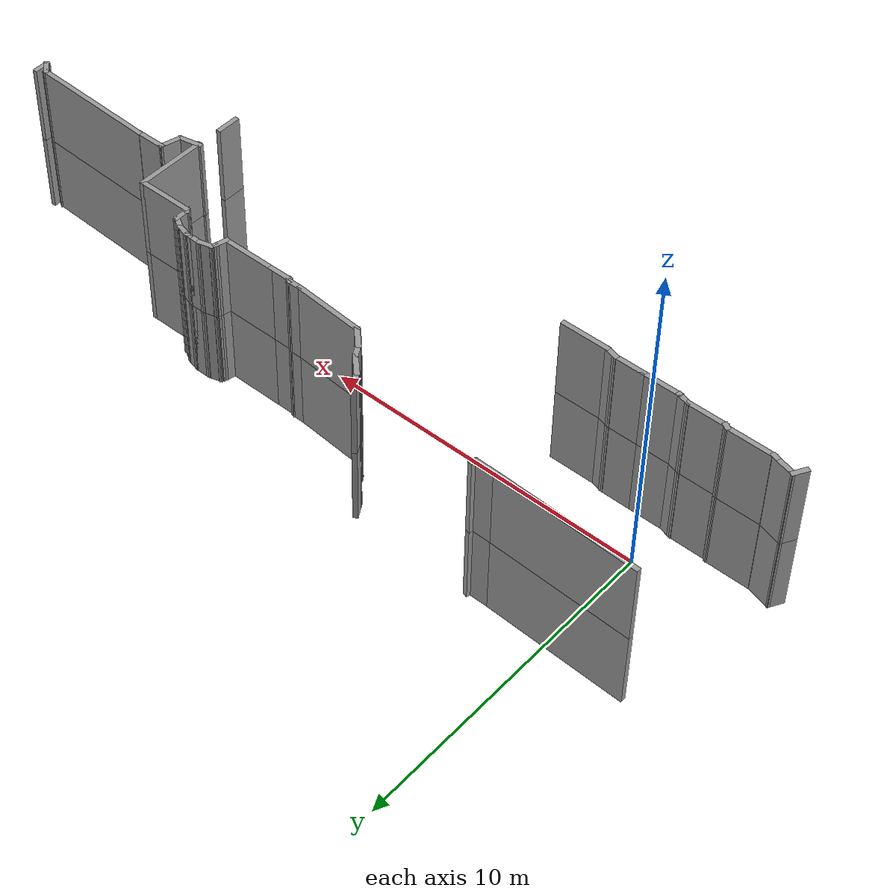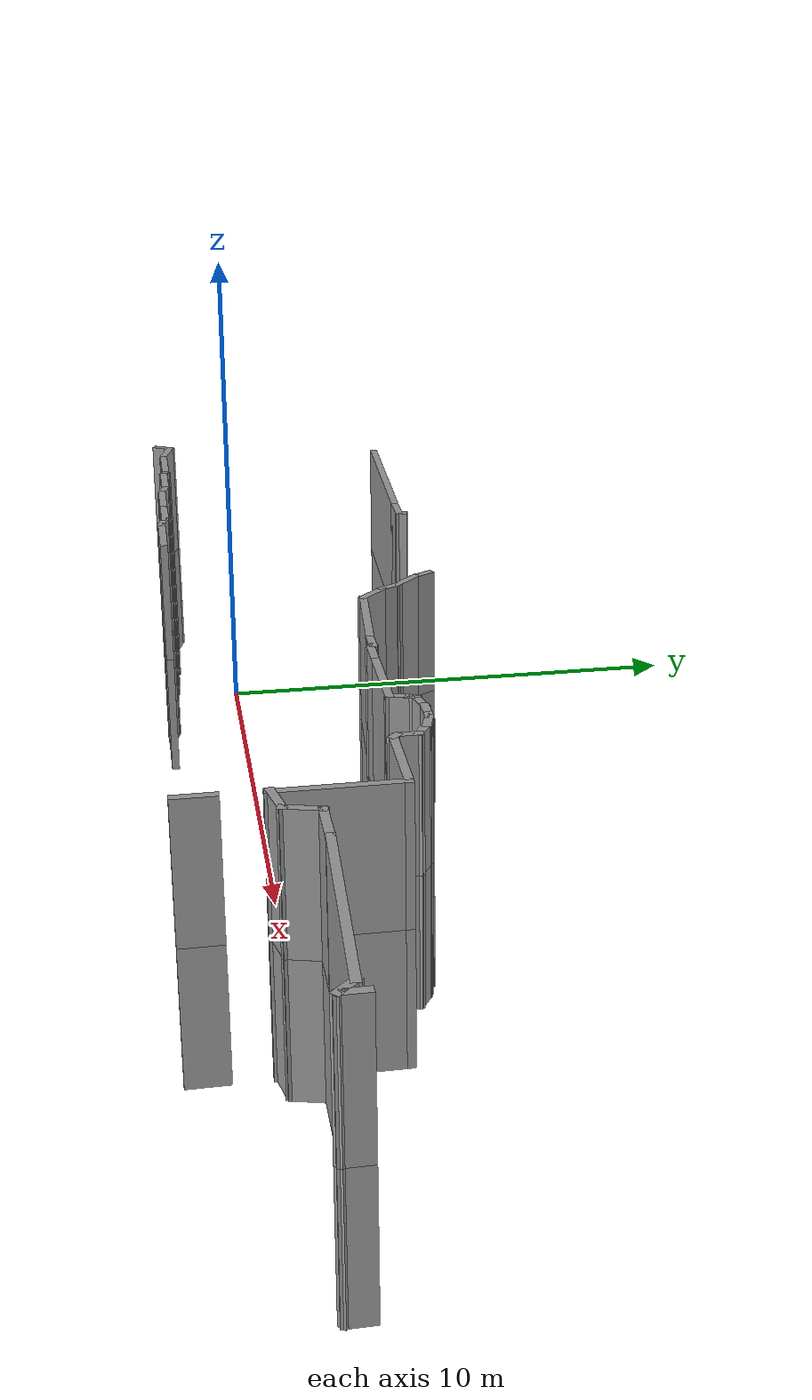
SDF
<sdf version="1.7">
 <model name="EnvDC00">
  <pose>8.4191 -5.62635 0 0 -0 0</pose>
  <link name="Wall_107">
   <collision name="Wall_107_Collision">
    <geometry><box><size>0.25 0.15 2.5</size></box></geometry>
    <pose>0 0 1.25 0 -0 0</pose>
   </collision>
   <visual name="Wall_107_Visual">
    <pose>0 0 1.25 0 -0 0</pose>
    <geometry><box><size>0.25 0.15 2.5</size></box></geometry>
    <material>
     <script><uri>file://media/materials/scripts/gazebo.material</uri><name>Gazebo/Grey</name></script>
     <ambient>1 1 1 1</ambient>
    </material>
    <meta><layer>0</layer></meta>
   </visual>
   <pose>-5.93616 9.1413 0 0 -0 -1.8326</pose>
  </link>
  <link name="Wall_108">
   <collision name="Wall_108_Collision">
    <geometry><box><size>0.75 0.15 2.5</size></box></geometry>
    <pose>0 0 1.25 0 -0 0</pose>
   </collision>
   <visual name="Wall_108_Visual">
    <pose>0 0 1.25 0 -0 0</pose>
    <geometry><box><size>0.75 0.15 2.5</size></box></geometry>
    <material>
     <script><uri>file://media/materials/scripts/gazebo.material</uri><name>Gazebo/Grey</name></script>
     <ambient>1 1 1 1</ambient>
    </material>
    <meta><layer>0</layer></meta>
   </visual>
   <pose>-6.24911 9.09509 0 0 -0 3.13464</pose>
  </link>
  <link name="Wall_111">
   <collision name="Wall_111_Collision">
    <geometry><box><size>4.42177 0.15 2.5</size></box></geometry>
    <pose>0 0 1.25 0 -0 0</pose>
   </collision>
   <visual name="Wall_111_Visual">
    <pose>0 0 1.25 0 -0 0</pose>
    <geometry><box><size>4.42177 0.15 2.5</size></box></geometry>
    <material>
     <script><uri>file://media/materials/scripts/gazebo.material</uri><name>Gazebo/Grey</name></script>
     <ambient>1 1 1 1</ambient>
    </material>
    <meta><layer>0</layer></meta>
   </visual>
   <pose>-8.68398 9.16284 0 0 -0 3.11085</pose>
  </link>
  <link name="Wall_142">
   <collision name="Wall_142_Collision">
    <geometry><box><size>0.75 0.15 2.5</size></box></geometry>
    <pose>0 0 1.25 0 -0 0</pose>
   </collision>
   <visual name="Wall_142_Visual">
    <pose>0 0 1.25 0 -0 0</pose>
    <geometry><box><size>0.75 0.15 2.5</size></box></geometry>
    <material>
     <script><uri>file://media/materials/scripts/gazebo.material</uri><name>Gazebo/Grey</name></script>
     <ambient>1 1 1 1</ambient>
    </material>
    <meta><layer>0</layer></meta>
   </visual>
   <pose>7.0376 4.07108 0 0 -0 -1.5708</pose>
  </link>
  <link name="Wall_167">
   <collision name="Wall_167_Collision">
    <geometry><box><size>1.5 0.15 2.5</size></box></geometry>
    <pose>0 0 1.25 0 -0 0</pose>
   </collision>
   <visual name="Wall_167_Visual">
    <pose>0 0 1.25 0 -0 0</pose>
    <geometry><box><size>1.5 0.15 2.5</size></box></geometry>
    <material>
     <script><uri>file://media/materials/scripts/gazebo.material</uri><name>Gazebo/Grey</name></script>
     <ambient>1 1 1 1</ambient>
    </material>
    <meta><layer>0</layer></meta>
   </visual>
   <pose>-5.33682 4.06947 0 0 -0 3.14159</pose>
  </link>
  <link name="Wall_168">
   <collision name="Wall_168_Collision">
    <geometry><box><size>0.5 0.15 2.5</size></box></geometry>
    <pose>0 0 1.25 0 -0 0</pose>
   </collision>
   <visual name="Wall_168_Visual">
    <pose>0 0 1.25 0 -0 0</pose>
    <geometry><box><size>0.5 0.15 2.5</size></box></geometry>
    <material>
     <script><uri>file://media/materials/scripts/gazebo.material</uri><name>Gazebo/Grey</name></script>
     <ambient>1 1 1 1</ambient>
    </material>
    <meta><layer>0</layer></meta>
   </visual>
   <pose>-6.18085 4.11477 0 0 -0 2.87979</pose>
  </link>
  <link name="Wall_169">
   <collision name="Wall_169_Collision">
    <geometry><box><size>1 0.15 2.5</size></box></geometry>
    <pose>0 0 1.25 0 -0 0</pose>
   </collision>
   <visual name="Wall_169_Visual">
    <pose>0 0 1.25 0 -0 0</pose>
    <geometry><box><size>1 0.15 2.5</size></box></geometry>
    <material>
     <script><uri>file://media/materials/scripts/gazebo.material</uri><name>Gazebo/Grey</name></script>
     <ambient>1 1 1 1</ambient>
    </material>
    <meta><layer>0</layer></meta>
   </visual>
   <pose>-6.77489 4.16006 0 0 -0 3.14159</pose>
  </link>
  <link name="Wall_170">
   <collision name="Wall_170_Collision">
    <geometry><box><size>1.25 0.15 2.5</size></box></geometry>
    <pose>0 0 1.25 0 -0 0</pose>
   </collision>
   <visual name="Wall_170_Visual">
    <pose>0 0 1.25 0 -0 0</pose>
    <geometry><box><size>1.25 0.15 2.5</size></box></geometry>
    <material>
     <script><uri>file://media/materials/scripts/gazebo.material</uri><name>Gazebo/Grey</name></script>
     <ambient>1 1 1 1</ambient>
    </material>
    <meta><layer>0</layer></meta>
   </visual>
   <pose>-7.74989 4.16006 0 0 -0 3.14159</pose>
  </link>
  <link name="Wall_172">
   <collision name="Wall_172_Collision">
    <geometry><box><size>0.5 0.15 2.5</size></box></geometry>
    <pose>0 0 1.25 0 -0 0</pose>
   </collision>
   <visual name="Wall_172_Visual">
    <pose>0 0 1.25 0 -0 0</pose>
    <geometry><box><size>0.5 0.15 2.5</size></box></geometry>
    <material>
     <script><uri>file://media/materials/scripts/gazebo.material</uri><name>Gazebo/Grey</name></script>
     <ambient>1 1 1 1</ambient>
    </material>
    <meta><layer>0</layer></meta>
   </visual>
   <pose>-8.46893 4.20535 0 0 -0 2.87979</pose>
  </link>
  <link name="Wall_173">
   <collision name="Wall_173_Collision">
    <geometry><box><size>1.25 0.15 2.5</size></box></geometry>
    <pose>0 0 1.25 0 -0 0</pose>
   </collision>
   <visual name="Wall_173_Visual">
    <pose>0 0 1.25 0 -0 0</pose>
    <geometry><box><size>1.25 0.15 2.5</size></box></geometry>
    <material>
     <script><uri>file://media/materials/scripts/gazebo.material</uri><name>Gazebo/Grey</name></script>
     <ambient>1 1 1 1</ambient>
    </material>
    <meta><layer>0</layer></meta>
   </visual>
   <pose>-9.18796 4.25064 0 0 -0 3.14159</pose>
  </link>
  <link name="Wall_174">
   <collision name="Wall_174_Collision">
    <geometry><box><size>0.25 0.15 2.5</size></box></geometry>
    <pose>0 0 1.25 0 -0 0</pose>
   </collision>
   <visual name="Wall_174_Visual">
    <pose>0 0 1.25 0 -0 0</pose>
    <geometry><box><size>0.25 0.15 2.5</size></box></geometry>
    <material>
     <script><uri>file://media/materials/scripts/gazebo.material</uri><name>Gazebo/Grey</name></script>
     <ambient>1 1 1 1</ambient>
    </material>
    <meta><layer>0</layer></meta>
   </visual>
   <pose>-9.78126 4.27564 0 0 -0 2.61799</pose>
  </link>
  <link name="Wall_175">
   <collision name="Wall_175_Collision">
    <geometry><box><size>1.5 0.15 2.5</size></box></geometry>
    <pose>0 0 1.25 0 -0 0</pose>
   </collision>
   <visual name="Wall_175_Visual">
    <pose>0 0 1.25 0 -0 0</pose>
    <geometry><box><size>1.5 0.15 2.5</size></box></geometry>
    <material>
     <script><uri>file://media/materials/scripts/gazebo.material</uri><name>Gazebo/Grey</name></script>
     <ambient>1 1 1 1</ambient>
    </material>
    <meta><layer>0</layer></meta>
   </visual>
   <pose>-10.4996 4.30065 0 0 -0 3.14159</pose>
  </link>
  <link name="Wall_180">
   <collision name="Wall_180_Collision">
    <geometry><box><size>0.25 0.15 2.5</size></box></geometry>
    <pose>0 0 1.25 0 -0 0</pose>
   </collision>
   <visual name="Wall_180_Visual">
    <pose>0 0 1.25 0 -0 0</pose>
    <geometry><box><size>0.25 0.15 2.5</size></box></geometry>
    <material>
     <script><uri>file://media/materials/scripts/gazebo.material</uri><name>Gazebo/Grey</name></script>
     <ambient>1 1 1 1</ambient>
    </material>
    <meta><layer>0</layer></meta>
   </visual>
   <pose>-11.2229 4.31359 0 0 -0 2.87979</pose>
  </link>
  <link name="Wall_181">
   <collision name="Wall_181_Collision">
    <geometry><box><size>0.75 0.15 2.5</size></box></geometry>
    <pose>0 0 1.25 0 -0 0</pose>
   </collision>
   <visual name="Wall_181_Visual">
    <pose>0 0 1.25 0 -0 0</pose>
    <geometry><box><size>0.75 0.15 2.5</size></box></geometry>
    <material>
     <script><uri>file://media/materials/scripts/gazebo.material</uri><name>Gazebo/Grey</name></script>
     <ambient>1 1 1 1</ambient>
    </material>
    <meta><layer>0</layer></meta>
   </visual>
   <pose>-11.5609 4.40417 0 0 -0 2.87979</pose>
  </link>
  <link name="Wall_187">
   <collision name="Wall_187_Collision">
    <geometry><box><size>0.5 0.15 2.5</size></box></geometry>
    <pose>0 0 1.25 0 -0 0</pose>
   </collision>
   <visual name="Wall_187_Visual">
    <pose>0 0 1.25 0 -0 0</pose>
    <geometry><box><size>0.5 0.15 2.5</size></box></geometry>
    <material>
     <script><uri>file://media/materials/scripts/gazebo.material</uri><name>Gazebo/Grey</name></script>
     <ambient>1 1 1 1</ambient>
    </material>
    <meta><layer>0</layer></meta>
   </visual>
   <pose>-11.9382 4.33026 0 0 -0 -2.0944</pose>
  </link>
  <link name="Wall_274">
   <collision name="Wall_274_Collision">
    <geometry><box><size>0.519297 0.15 2.5</size></box></geometry>
    <pose>0 0 1.25 0 -0 0</pose>
   </collision>
   <visual name="Wall_274_Visual">
    <pose>0 0 1.25 0 -0 0</pose>
    <geometry><box><size>0.519297 0.15 2.5</size></box></geometry>
    <material>
     <script><uri>file://media/materials/scripts/gazebo.material</uri><name>Gazebo/Grey</name></script>
     <ambient>1 1 1 1</ambient>
    </material>
    <meta><layer>1</layer></meta>
   </visual>
   <pose>12.7164 5.69748 2.5 0 -0 -1.5708</pose>
  </link>
  <link name="Wall_275">
   <collision name="Wall_275_Collision">
    <geometry><box><size>0.5 0.15 2.5</size></box></geometry>
    <pose>0 0 1.25 0 -0 0</pose>
   </collision>
   <visual name="Wall_275_Visual">
    <pose>0 0 1.25 0 -0 0</pose>
    <geometry><box><size>0.5 0.15 2.5</size></box></geometry>
    <material>
     <script><uri>file://media/materials/scripts/gazebo.material</uri><name>Gazebo/Grey</name></script>
     <ambient>1 1 1 1</ambient>
    </material>
    <meta><layer>1</layer></meta>
   </visual>
   <pose>12.5926 5.63658 2.5 0 -0 2.35619</pose>
  </link>
  <link name="Wall_276">
   <collision name="Wall_276_Collision">
    <geometry><box><size>3.99642 0.15 2.5</size></box></geometry>
    <pose>0 0 1.25 0 -0 0</pose>
   </collision>
   <visual name="Wall_276_Visual">
    <pose>0 0 1.25 0 -0 0</pose>
    <geometry><box><size>3.99642 0.15 2.5</size></box></geometry>
    <material>
     <script><uri>file://media/materials/scripts/gazebo.material</uri><name>Gazebo/Grey</name></script>
     <ambient>1 1 1 1</ambient>
    </material>
    <meta><layer>1</layer></meta>
   </visual>
   <pose>10.547 5.83328 2.5 0 -0 3.10365</pose>
  </link>
  <link name="Wall_277">
   <collision name="Wall_277_Collision">
    <geometry><box><size>1 0.15 2.5</size></box></geometry>
    <pose>0 0 1.25 0 -0 0</pose>
   </collision>
   <visual name="Wall_277_Visual">
    <pose>0 0 1.25 0 -0 0</pose>
    <geometry><box><size>1 0.15 2.5</size></box></geometry>
    <material>
     <script><uri>file://media/materials/scripts/gazebo.material</uri><name>Gazebo/Grey</name></script>
     <ambient>1 1 1 1</ambient>
    </material>
    <meta><layer>1</layer></meta>
   </visual>
   <pose>8.20021 5.89989 2.5 0 -0 3.14159</pose>
  </link>
  <link name="Wall_278">
   <collision name="Wall_278_Collision">
    <geometry><box><size>0.75 0.15 2.5</size></box></geometry>
    <pose>0 0 1.25 0 -0 0</pose>
   </collision>
   <visual name="Wall_278_Visual">
    <pose>0 0 1.25 0 -0 0</pose>
    <geometry><box><size>0.75 0.15 2.5</size></box></geometry>
    <material>
     <script><uri>file://media/materials/scripts/gazebo.material</uri><name>Gazebo/Grey</name></script>
     <ambient>1 1 1 1</ambient>
    </material>
    <meta><layer>1</layer></meta>
   </visual>
   <pose>7.69756 5.61011 2.5 0 -0 -1.8326</pose>
  </link>
  <link name="Wall_279">
   <collision name="Wall_279_Collision">
    <geometry><box><size>0.761118 0.15 2.5</size></box></geometry>
    <pose>0 0 1.25 0 -0 0</pose>
   </collision>
   <visual name="Wall_279_Visual">
    <pose>0 0 1.25 0 -0 0</pose>
    <geometry><box><size>0.761118 0.15 2.5</size></box></geometry>
    <material>
     <script><uri>file://media/materials/scripts/gazebo.material</uri><name>Gazebo/Grey</name></script>
     <ambient>1 1 1 1</ambient>
    </material>
    <meta><layer>1</layer></meta>
   </visual>
   <pose>7.32083 5.25778 2.5 0 -0 -2.93542</pose>
  </link>
  <link name="Wall_280">
   <collision name="Wall_280_Collision">
    <geometry><box><size>2.25 0.15 2.5</size></box></geometry>
    <pose>0 0 1.25 0 -0 0</pose>
   </collision>
   <visual name="Wall_280_Visual">
    <pose>0 0 1.25 0 -0 0</pose>
    <geometry><box><size>2.25 0.15 2.5</size></box></geometry>
    <material>
     <script><uri>file://media/materials/scripts/gazebo.material</uri><name>Gazebo/Grey</name></script>
     <ambient>1 1 1 1</ambient>
    </material>
    <meta><layer>1</layer></meta>
   </visual>
   <pose>7.07114 6.22054 2.5 0 -0 1.5708</pose>
  </link>
  <link name="Wall_281">
   <collision name="Wall_281_Collision">
    <geometry><box><size>1.75 0.15 2.5</size></box></geometry>
    <pose>0 0 1.25 0 -0 0</pose>
   </collision>
   <visual name="Wall_281_Visual">
    <pose>0 0 1.25 0 -0 0</pose>
    <geometry><box><size>1.75 0.15 2.5</size></box></geometry>
    <material>
     <script><uri>file://media/materials/scripts/gazebo.material</uri><name>Gazebo/Grey</name></script>
     <ambient>1 1 1 1</ambient>
    </material>
    <meta><layer>1</layer></meta>
   </visual>
   <pose>6.27114 7.27054 2.5 0 -0 3.14159</pose>
  </link>
  <link name="Wall_282">
   <collision name="Wall_282_Collision">
    <geometry><box><size>0.25 0.15 2.5</size></box></geometry>
    <pose>0 0 1.25 0 -0 0</pose>
   </collision>
   <visual name="Wall_282_Visual">
    <pose>0 0 1.25 0 -0 0</pose>
    <geometry><box><size>0.25 0.15 2.5</size></box></geometry>
    <material>
     <script><uri>file://media/materials/scripts/gazebo.material</uri><name>Gazebo/Grey</name></script>
     <ambient>1 1 1 1</ambient>
    </material>
    <meta><layer>1</layer></meta>
   </visual>
   <pose>5.43578 7.3059 2.5 0 -0 2.35619</pose>
  </link>
  <link name="Wall_283">
   <collision name="Wall_283_Collision">
    <geometry><box><size>0.5 0.15 2.5</size></box></geometry>
    <pose>0 0 1.25 0 -0 0</pose>
   </collision>
   <visual name="Wall_283_Visual">
    <pose>0 0 1.25 0 -0 0</pose>
    <geometry><box><size>0.5 0.15 2.5</size></box></geometry>
    <material>
     <script><uri>file://media/materials/scripts/gazebo.material</uri><name>Gazebo/Grey</name></script>
     <ambient>1 1 1 1</ambient>
    </material>
    <meta><layer>1</layer></meta>
   </visual>
   <pose>5.40043 7.51625 2.5 0 -0 1.5708</pose>
  </link>
  <link name="Wall_284">
   <collision name="Wall_284_Collision">
    <geometry><box><size>0.5 0.15 2.5</size></box></geometry>
    <pose>0 0 1.25 0 -0 0</pose>
   </collision>
   <visual name="Wall_284_Visual">
    <pose>0 0 1.25 0 -0 0</pose>
    <geometry><box><size>0.5 0.15 2.5</size></box></geometry>
    <material>
     <script><uri>file://media/materials/scripts/gazebo.material</uri><name>Gazebo/Grey</name></script>
     <ambient>1 1 1 1</ambient>
    </material>
    <meta><layer>1</layer></meta>
   </visual>
   <pose>5.24887 7.77875 2.5 0 -0 2.61799</pose>
  </link>
  <link name="Wall_285">
   <collision name="Wall_285_Collision">
    <geometry><box><size>0.5 0.15 2.5</size></box></geometry>
    <pose>0 0 1.25 0 -0 0</pose>
   </collision>
   <visual name="Wall_285_Visual">
    <pose>0 0 1.25 0 -0 0</pose>
    <geometry><box><size>0.5 0.15 2.5</size></box></geometry>
    <material>
     <script><uri>file://media/materials/scripts/gazebo.material</uri><name>Gazebo/Grey</name></script>
     <ambient>1 1 1 1</ambient>
    </material>
    <meta><layer>1</layer></meta>
   </visual>
   <pose>4.92828 7.91155 2.5 0 -0 2.87979</pose>
  </link>
  <link name="Wall_286">
   <collision name="Wall_286_Collision">
    <geometry><box><size>0.25 0.15 2.5</size></box></geometry>
    <pose>0 0 1.25 0 -0 0</pose>
   </collision>
   <visual name="Wall_286_Visual">
    <pose>0 0 1.25 0 -0 0</pose>
    <geometry><box><size>0.25 0.15 2.5</size></box></geometry>
    <material>
     <script><uri>file://media/materials/scripts/gazebo.material</uri><name>Gazebo/Grey</name></script>
     <ambient>1 1 1 1</ambient>
    </material>
    <meta><layer>1</layer></meta>
   </visual>
   <pose>4.70925 7.95684 2.5 0 -0 3.14159</pose>
  </link>
  <link name="Wall_287">
   <collision name="Wall_287_Collision">
    <geometry><box><size>0.5 0.15 2.5</size></box></geometry>
    <pose>0 0 1.25 0 -0 0</pose>
   </collision>
   <visual name="Wall_287_Visual">
    <pose>0 0 1.25 0 -0 0</pose>
    <geometry><box><size>0.5 0.15 2.5</size></box></geometry>
    <material>
     <script><uri>file://media/materials/scripts/gazebo.material</uri><name>Gazebo/Grey</name></script>
     <ambient>1 1 1 1</ambient>
    </material>
    <meta><layer>1</layer></meta>
   </visual>
   <pose>4.48425 7.95684 2.5 0 -0 3.14159</pose>
  </link>
  <link name="Wall_288">
   <collision name="Wall_288_Collision">
    <geometry><box><size>0.5 0.15 2.5</size></box></geometry>
    <pose>0 0 1.25 0 -0 0</pose>
   </collision>
   <visual name="Wall_288_Visual">
    <pose>0 0 1.25 0 -0 0</pose>
    <geometry><box><size>0.5 0.15 2.5</size></box></geometry>
    <material>
     <script><uri>file://media/materials/scripts/gazebo.material</uri><name>Gazebo/Grey</name></script>
     <ambient>1 1 1 1</ambient>
    </material>
    <meta><layer>1</layer></meta>
   </visual>
   <pose>4.14021 7.91155 2.5 0 -0 -2.87979</pose>
  </link>
  <link name="Wall_289">
   <collision name="Wall_289_Collision">
    <geometry><box><size>0.25 0.15 2.5</size></box></geometry>
    <pose>0 0 1.25 0 -0 0</pose>
   </collision>
   <visual name="Wall_289_Visual">
    <pose>0 0 1.25 0 -0 0</pose>
    <geometry><box><size>0.25 0.15 2.5</size></box></geometry>
    <material>
     <script><uri>file://media/materials/scripts/gazebo.material</uri><name>Gazebo/Grey</name></script>
     <ambient>1 1 1 1</ambient>
    </material>
    <meta><layer>1</layer></meta>
   </visual>
   <pose>3.94617 7.82295 2.5 0 -0 -2.0944</pose>
  </link>
  <link name="Wall_290">
   <collision name="Wall_290_Collision">
    <geometry><box><size>0.5 0.15 2.5</size></box></geometry>
    <pose>0 0 1.25 0 -0 0</pose>
   </collision>
   <visual name="Wall_290_Visual">
    <pose>0 0 1.25 0 -0 0</pose>
    <geometry><box><size>0.5 0.15 2.5</size></box></geometry>
    <material>
     <script><uri>file://media/materials/scripts/gazebo.material</uri><name>Gazebo/Grey</name></script>
     <ambient>1 1 1 1</ambient>
    </material>
    <meta><layer>1</layer></meta>
   </visual>
   <pose>3.87588 7.61061 2.5 0 -0 -1.8326</pose>
  </link>
  <link name="Wall_291">
   <collision name="Wall_291_Collision">
    <geometry><box><size>1.75 0.15 2.5</size></box></geometry>
    <pose>0 0 1.25 0 -0 0</pose>
   </collision>
   <visual name="Wall_291_Visual">
    <pose>0 0 1.25 0 -0 0</pose>
    <geometry><box><size>1.75 0.15 2.5</size></box></geometry>
    <material>
     <script><uri>file://media/materials/scripts/gazebo.material</uri><name>Gazebo/Grey</name></script>
     <ambient>1 1 1 1</ambient>
    </material>
    <meta><layer>1</layer></meta>
   </visual>
   <pose>3.03058 7.44158 2.5 0 -0 3.14159</pose>
  </link>
  <link name="Wall_292">
   <collision name="Wall_292_Collision">
    <geometry><box><size>0.75 0.15 2.5</size></box></geometry>
    <pose>0 0 1.25 0 -0 0</pose>
   </collision>
   <visual name="Wall_292_Visual">
    <pose>0 0 1.25 0 -0 0</pose>
    <geometry><box><size>0.75 0.15 2.5</size></box></geometry>
    <material>
     <script><uri>file://media/materials/scripts/gazebo.material</uri><name>Gazebo/Grey</name></script>
     <ambient>1 1 1 1</ambient>
    </material>
    <meta><layer>1</layer></meta>
   </visual>
   <pose>1.93058 7.44158 2.5 0 -0 3.14159</pose>
  </link>
  <link name="Wall_293">
   <collision name="Wall_293_Collision">
    <geometry><box><size>0.25 0.15 2.5</size></box></geometry>
    <pose>0 0 1.25 0 -0 0</pose>
   </collision>
   <visual name="Wall_293_Visual">
    <pose>0 0 1.25 0 -0 0</pose>
    <geometry><box><size>0.25 0.15 2.5</size></box></geometry>
    <material>
     <script><uri>file://media/materials/scripts/gazebo.material</uri><name>Gazebo/Grey</name></script>
     <ambient>1 1 1 1</ambient>
    </material>
    <meta><layer>1</layer></meta>
   </visual>
   <pose>1.58728 7.46658 2.5 0 -0 2.61799</pose>
  </link>
  <link name="Wall_294">
   <collision name="Wall_294_Collision">
    <geometry><box><size>0.5 0.15 2.5</size></box></geometry>
    <pose>0 0 1.25 0 -0 0</pose>
   </collision>
   <visual name="Wall_294_Visual">
    <pose>0 0 1.25 0 -0 0</pose>
    <geometry><box><size>0.5 0.15 2.5</size></box></geometry>
    <material>
     <script><uri>file://media/materials/scripts/gazebo.material</uri><name>Gazebo/Grey</name></script>
     <ambient>1 1 1 1</ambient>
    </material>
    <meta><layer>1</layer></meta>
   </visual>
   <pose>1.36898 7.49158 2.5 0 -0 3.14159</pose>
  </link>
  <link name="Wall_295">
   <collision name="Wall_295_Collision">
    <geometry><box><size>2.23535 0.15 2.5</size></box></geometry>
    <pose>0 0 1.25 0 -0 0</pose>
   </collision>
   <visual name="Wall_295_Visual">
    <pose>0 0 1.25 0 -0 0</pose>
    <geometry><box><size>2.23535 0.15 2.5</size></box></geometry>
    <material>
     <script><uri>file://media/materials/scripts/gazebo.material</uri><name>Gazebo/Grey</name></script>
     <ambient>1 1 1 1</ambient>
    </material>
    <meta><layer>1</layer></meta>
   </visual>
   <pose>0.154204 7.56922 2.5 0 -0 3.06706</pose>
  </link>
  <link name="Wall_296">
   <collision name="Wall_296_Collision">
    <geometry><box><size>0.75 0.15 2.5</size></box></geometry>
    <pose>0 0 1.25 0 -0 0</pose>
   </collision>
   <visual name="Wall_296_Visual">
    <pose>0 0 1.25 0 -0 0</pose>
    <geometry><box><size>0.75 0.15 2.5</size></box></geometry>
    <material>
     <script><uri>file://media/materials/scripts/gazebo.material</uri><name>Gazebo/Grey</name></script>
     <ambient>1 1 1 1</ambient>
    </material>
    <meta><layer>1</layer></meta>
   </visual>
   <pose>-1.09771 7.859 2.5 0 -0 2.35619</pose>
  </link>
  <link name="Wall_297">
   <collision name="Wall_297_Collision">
    <geometry><box><size>0.5 0.15 2.5</size></box></geometry>
    <pose>0 0 1.25 0 -0 0</pose>
   </collision>
   <visual name="Wall_297_Visual">
    <pose>0 0 1.25 0 -0 0</pose>
    <geometry><box><size>0.5 0.15 2.5</size></box></geometry>
    <material>
     <script><uri>file://media/materials/scripts/gazebo.material</uri><name>Gazebo/Grey</name></script>
     <ambient>1 1 1 1</ambient>
    </material>
    <meta><layer>1</layer></meta>
   </visual>
   <pose>-1.39734 8.22269 2.5 0 -0 2.0944</pose>
  </link>
  <link name="Wall_298">
   <collision name="Wall_298_Collision">
    <geometry><box><size>0.75 0.15 2.5</size></box></geometry>
    <pose>0 0 1.25 0 -0 0</pose>
   </collision>
   <visual name="Wall_298_Visual">
    <pose>0 0 1.25 0 -0 0</pose>
    <geometry><box><size>0.75 0.15 2.5</size></box></geometry>
    <material>
     <script><uri>file://media/materials/scripts/gazebo.material</uri><name>Gazebo/Grey</name></script>
     <ambient>1 1 1 1</ambient>
    </material>
    <meta><layer>1</layer></meta>
   </visual>
   <pose>-1.69697 8.58637 2.5 0 -0 2.35619</pose>
  </link>
  <link name="Wall_299">
   <collision name="Wall_299_Collision">
    <geometry><box><size>0.5 0.15 2.5</size></box></geometry>
    <pose>0 0 1.25 0 -0 0</pose>
   </collision>
   <visual name="Wall_299_Visual">
    <pose>0 0 1.25 0 -0 0</pose>
    <geometry><box><size>0.5 0.15 2.5</size></box></geometry>
    <material>
     <script><uri>file://media/materials/scripts/gazebo.material</uri><name>Gazebo/Grey</name></script>
     <ambient>1 1 1 1</ambient>
    </material>
    <meta><layer>1</layer></meta>
   </visual>
   <pose>-1.9966 8.95006 2.5 0 -0 2.0944</pose>
  </link>
  <link name="Wall_314">
   <collision name="Wall_314_Collision">
    <geometry><box><size>0.25 0.15 2.5</size></box></geometry>
    <pose>0 0 1.25 0 -0 0</pose>
   </collision>
   <visual name="Wall_314_Visual">
    <pose>0 0 1.25 0 -0 0</pose>
    <geometry><box><size>0.25 0.15 2.5</size></box></geometry>
    <material>
     <script><uri>file://media/materials/scripts/gazebo.material</uri><name>Gazebo/Grey</name></script>
     <ambient>1 1 1 1</ambient>
    </material>
    <meta><layer>1</layer></meta>
   </visual>
   <pose>-5.93616 9.1413 2.5 0 -0 -1.8326</pose>
  </link>
  <link name="Wall_315">
   <collision name="Wall_315_Collision">
    <geometry><box><size>0.750014 0.15 2.5</size></box></geometry>
    <pose>0 0 1.25 0 -0 0</pose>
   </collision>
   <visual name="Wall_315_Visual">
    <pose>0 0 1.25 0 -0 0</pose>
    <geometry><box><size>0.750014 0.15 2.5</size></box></geometry>
    <material>
     <script><uri>file://media/materials/scripts/gazebo.material</uri><name>Gazebo/Grey</name></script>
     <ambient>1 1 1 1</ambient>
    </material>
    <meta><layer>1</layer></meta>
   </visual>
   <pose>-6.24911 9.09509 2.5 0 -0 3.13464</pose>
  </link>
  <link name="Wall_316">
   <collision name="Wall_316_Collision">
    <geometry><box><size>4.42177 0.15 2.5</size></box></geometry>
    <pose>0 0 1.25 0 -0 0</pose>
   </collision>
   <visual name="Wall_316_Visual">
    <pose>0 0 1.25 0 -0 0</pose>
    <geometry><box><size>4.42177 0.15 2.5</size></box></geometry>
    <material>
     <script><uri>file://media/materials/scripts/gazebo.material</uri><name>Gazebo/Grey</name></script>
     <ambient>1 1 1 1</ambient>
    </material>
    <meta><layer>1</layer></meta>
   </visual>
   <pose>-8.68398 9.16284 2.5 0 -0 3.11085</pose>
  </link>
  <link name="Wall_332">
   <collision name="Wall_332_Collision">
    <geometry><box><size>0.75 0.15 2.5</size></box></geometry>
    <pose>0 0 1.25 0 -0 0</pose>
   </collision>
   <visual name="Wall_332_Visual">
    <pose>0 0 1.25 0 -0 0</pose>
    <geometry><box><size>0.75 0.15 2.5</size></box></geometry>
    <material>
     <script><uri>file://media/materials/scripts/gazebo.material</uri><name>Gazebo/Grey</name></script>
     <ambient>1 1 1 1</ambient>
    </material>
    <meta><layer>1</layer></meta>
   </visual>
   <pose>7.0376 4.07108 2.5 0 -0 -1.5708</pose>
  </link>
  <link name="Wall_355">
   <collision name="Wall_355_Collision">
    <geometry><box><size>1.5 0.15 2.5</size></box></geometry>
    <pose>0 0 1.25 0 -0 0</pose>
   </collision>
   <visual name="Wall_355_Visual">
    <pose>0 0 1.25 0 -0 0</pose>
    <geometry><box><size>1.5 0.15 2.5</size></box></geometry>
    <material>
     <script><uri>file://media/materials/scripts/gazebo.material</uri><name>Gazebo/Grey</name></script>
     <ambient>1 1 1 1</ambient>
    </material>
    <meta><layer>1</layer></meta>
   </visual>
   <pose>-5.33682 4.06947 2.5 0 -0 3.14159</pose>
  </link>
  <link name="Wall_356">
   <collision name="Wall_356_Collision">
    <geometry><box><size>0.5 0.15 2.5</size></box></geometry>
    <pose>0 0 1.25 0 -0 0</pose>
   </collision>
   <visual name="Wall_356_Visual">
    <pose>0 0 1.25 0 -0 0</pose>
    <geometry><box><size>0.5 0.15 2.5</size></box></geometry>
    <material>
     <script><uri>file://media/materials/scripts/gazebo.material</uri><name>Gazebo/Grey</name></script>
     <ambient>1 1 1 1</ambient>
    </material>
    <meta><layer>1</layer></meta>
   </visual>
   <pose>-6.18085 4.11477 2.5 0 -0 2.87979</pose>
  </link>
  <link name="Wall_357">
   <collision name="Wall_357_Collision">
    <geometry><box><size>1 0.15 2.5</size></box></geometry>
    <pose>0 0 1.25 0 -0 0</pose>
   </collision>
   <visual name="Wall_357_Visual">
    <pose>0 0 1.25 0 -0 0</pose>
    <geometry><box><size>1 0.15 2.5</size></box></geometry>
    <material>
     <script><uri>file://media/materials/scripts/gazebo.material</uri><name>Gazebo/Grey</name></script>
     <ambient>1 1 1 1</ambient>
    </material>
    <meta><layer>1</layer></meta>
   </visual>
   <pose>-6.77489 4.16006 2.5 0 -0 3.14159</pose>
  </link>
  <link name="Wall_358">
   <collision name="Wall_358_Collision">
    <geometry><box><size>1.25 0.15 2.5</size></box></geometry>
    <pose>0 0 1.25 0 -0 0</pose>
   </collision>
   <visual name="Wall_358_Visual">
    <pose>0 0 1.25 0 -0 0</pose>
    <geometry><box><size>1.25 0.15 2.5</size></box></geometry>
    <material>
     <script><uri>file://media/materials/scripts/gazebo.material</uri><name>Gazebo/Grey</name></script>
     <ambient>1 1 1 1</ambient>
    </material>
    <meta><layer>1</layer></meta>
   </visual>
   <pose>-7.74989 4.16006 2.5 0 -0 3.14159</pose>
  </link>
  <link name="Wall_359">
   <collision name="Wall_359_Collision">
    <geometry><box><size>0.5 0.15 2.5</size></box></geometry>
    <pose>0 0 1.25 0 -0 0</pose>
   </collision>
   <visual name="Wall_359_Visual">
    <pose>0 0 1.25 0 -0 0</pose>
    <geometry><box><size>0.5 0.15 2.5</size></box></geometry>
    <material>
     <script><uri>file://media/materials/scripts/gazebo.material</uri><name>Gazebo/Grey</name></script>
     <ambient>1 1 1 1</ambient>
    </material>
    <meta><layer>1</layer></meta>
   </visual>
   <pose>-8.46893 4.20535 2.5 0 -0 2.87979</pose>
  </link>
  <link name="Wall_360">
   <collision name="Wall_360_Collision">
    <geometry><box><size>1.25 0.15 2.5</size></box></geometry>
    <pose>0 0 1.25 0 -0 0</pose>
   </collision>
   <visual name="Wall_360_Visual">
    <pose>0 0 1.25 0 -0 0</pose>
    <geometry><box><size>1.25 0.15 2.5</size></box></geometry>
    <material>
     <script><uri>file://media/materials/scripts/gazebo.material</uri><name>Gazebo/Grey</name></script>
     <ambient>1 1 1 1</ambient>
    </material>
    <meta><layer>1</layer></meta>
   </visual>
   <pose>-9.18796 4.25064 2.5 0 -0 3.14159</pose>
  </link>
  <link name="Wall_361">
   <collision name="Wall_361_Collision">
    <geometry><box><size>0.25 0.15 2.5</size></box></geometry>
    <pose>0 0 1.25 0 -0 0</pose>
   </collision>
   <visual name="Wall_361_Visual">
    <pose>0 0 1.25 0 -0 0</pose>
    <geometry><box><size>0.25 0.15 2.5</size></box></geometry>
    <material>
     <script><uri>file://media/materials/scripts/gazebo.material</uri><name>Gazebo/Grey</name></script>
     <ambient>1 1 1 1</ambient>
    </material>
    <meta><layer>1</layer></meta>
   </visual>
   <pose>-9.78126 4.27564 2.5 0 -0 2.61799</pose>
  </link>
  <link name="Wall_362">
   <collision name="Wall_362_Collision">
    <geometry><box><size>1.5 0.15 2.5</size></box></geometry>
    <pose>0 0 1.25 0 -0 0</pose>
   </collision>
   <visual name="Wall_362_Visual">
    <pose>0 0 1.25 0 -0 0</pose>
    <geometry><box><size>1.5 0.15 2.5</size></box></geometry>
    <material>
     <script><uri>file://media/materials/scripts/gazebo.material</uri><name>Gazebo/Grey</name></script>
     <ambient>1 1 1 1</ambient>
    </material>
    <meta><layer>1</layer></meta>
   </visual>
   <pose>-10.4996 4.30065 2.5 0 -0 3.14159</pose>
  </link>
  <link name="Wall_363">
   <collision name="Wall_363_Collision">
    <geometry><box><size>0.25 0.15 2.5</size></box></geometry>
    <pose>0 0 1.25 0 -0 0</pose>
   </collision>
   <visual name="Wall_363_Visual">
    <pose>0 0 1.25 0 -0 0</pose>
    <geometry><box><size>0.25 0.15 2.5</size></box></geometry>
    <material>
     <script><uri>file://media/materials/scripts/gazebo.material</uri><name>Gazebo/Grey</name></script>
     <ambient>1 1 1 1</ambient>
    </material>
    <meta><layer>1</layer></meta>
   </visual>
   <pose>-11.2229 4.31359 2.5 0 -0 2.87979</pose>
  </link>
  <link name="Wall_364">
   <collision name="Wall_364_Collision">
    <geometry><box><size>0.75 0.15 2.5</size></box></geometry>
    <pose>0 0 1.25 0 -0 0</pose>
   </collision>
   <visual name="Wall_364_Visual">
    <pose>0 0 1.25 0 -0 0</pose>
    <geometry><box><size>0.75 0.15 2.5</size></box></geometry>
    <material>
     <script><uri>file://media/materials/scripts/gazebo.material</uri><name>Gazebo/Grey</name></script>
     <ambient>1 1 1 1</ambient>
    </material>
    <meta><layer>1</layer></meta>
   </visual>
   <pose>-11.5609 4.40417 2.5 0 -0 2.87979</pose>
  </link>
  <link name="Wall_365">
   <collision name="Wall_365_Collision">
    <geometry><box><size>0.5 0.15 2.5</size></box></geometry>
    <pose>0 0 1.25 0 -0 0</pose>
   </collision>
   <visual name="Wall_365_Visual">
    <pose>0 0 1.25 0 -0 0</pose>
    <geometry><box><size>0.5 0.15 2.5</size></box></geometry>
    <material>
     <script><uri>file://media/materials/scripts/gazebo.material</uri><name>Gazebo/Grey</name></script>
     <ambient>1 1 1 1</ambient>
    </material>
    <meta><layer>1</layer></meta>
   </visual>
   <pose>-11.9382 4.33026 2.5 0 -0 -2.0944</pose>
  </link>
  <link name="Wall_57">
   <collision name="Wall_57_Collision">
    <geometry><box><size>0.519297 0.15 2.5</size></box></geometry>
    <pose>0 0 1.25 0 -0 0</pose>
   </collision>
   <visual name="Wall_57_Visual">
    <pose>0 0 1.25 0 -0 0</pose>
    <geometry><box><size>0.519297 0.15 2.5</size></box></geometry>
    <material>
     <script><uri>file://media/materials/scripts/gazebo.material</uri><name>Gazebo/Grey</name></script>
     <ambient>1 1 1 1</ambient>
    </material>
    <meta><layer>0</layer></meta>
   </visual>
   <pose>12.7164 5.69748 0 0 -0 -1.5708</pose>
  </link>
  <link name="Wall_59">
   <collision name="Wall_59_Collision">
    <geometry><box><size>0.5 0.15 2.5</size></box></geometry>
    <pose>0 0 1.25 0 -0 0</pose>
   </collision>
   <visual name="Wall_59_Visual">
    <pose>0 0 1.25 0 -0 0</pose>
    <geometry><box><size>0.5 0.15 2.5</size></box></geometry>
    <material>
     <script><uri>file://media/materials/scripts/gazebo.material</uri><name>Gazebo/Grey</name></script>
     <ambient>1 1 1 1</ambient>
    </material>
    <meta><layer>0</layer></meta>
   </visual>
   <pose>12.5926 5.63658 0 0 -0 2.35619</pose>
  </link>
  <link name="Wall_60">
   <collision name="Wall_60_Collision">
    <geometry><box><size>3.99642 0.15 2.5</size></box></geometry>
    <pose>0 0 1.25 0 -0 0</pose>
   </collision>
   <visual name="Wall_60_Visual">
    <pose>0 0 1.25 0 -0 0</pose>
    <geometry><box><size>3.99642 0.15 2.5</size></box></geometry>
    <material>
     <script><uri>file://media/materials/scripts/gazebo.material</uri><name>Gazebo/Grey</name></script>
     <ambient>1 1 1 1</ambient>
    </material>
    <meta><layer>0</layer></meta>
   </visual>
   <pose>10.547 5.83328 0 0 -0 3.10365</pose>
  </link>
  <link name="Wall_61">
   <collision name="Wall_61_Collision">
    <geometry><box><size>1 0.15 2.5</size></box></geometry>
    <pose>0 0 1.25 0 -0 0</pose>
   </collision>
   <visual name="Wall_61_Visual">
    <pose>0 0 1.25 0 -0 0</pose>
    <geometry><box><size>1 0.15 2.5</size></box></geometry>
    <material>
     <script><uri>file://media/materials/scripts/gazebo.material</uri><name>Gazebo/Grey</name></script>
     <ambient>1 1 1 1</ambient>
    </material>
    <meta><layer>0</layer></meta>
   </visual>
   <pose>8.20021 5.89989 0 0 -0 3.14159</pose>
  </link>
  <link name="Wall_63">
   <collision name="Wall_63_Collision">
    <geometry><box><size>0.75 0.15 2.5</size></box></geometry>
    <pose>0 0 1.25 0 -0 0</pose>
   </collision>
   <visual name="Wall_63_Visual">
    <pose>0 0 1.25 0 -0 0</pose>
    <geometry><box><size>0.75 0.15 2.5</size></box></geometry>
    <material>
     <script><uri>file://media/materials/scripts/gazebo.material</uri><name>Gazebo/Grey</name></script>
     <ambient>1 1 1 1</ambient>
    </material>
    <meta><layer>0</layer></meta>
   </visual>
   <pose>7.69756 5.61011 0 0 -0 -1.8326</pose>
  </link>
  <link name="Wall_64">
   <collision name="Wall_64_Collision">
    <geometry><box><size>0.761118 0.15 2.5</size></box></geometry>
    <pose>0 0 1.25 0 -0 0</pose>
   </collision>
   <visual name="Wall_64_Visual">
    <pose>0 0 1.25 0 -0 0</pose>
    <geometry><box><size>0.761118 0.15 2.5</size></box></geometry>
    <material>
     <script><uri>file://media/materials/scripts/gazebo.material</uri><name>Gazebo/Grey</name></script>
     <ambient>1 1 1 1</ambient>
    </material>
    <meta><layer>0</layer></meta>
   </visual>
   <pose>7.32083 5.25778 0 0 -0 -2.93542</pose>
  </link>
  <link name="Wall_67">
   <collision name="Wall_67_Collision">
    <geometry><box><size>2.25 0.15 2.5</size></box></geometry>
    <pose>0 0 1.25 0 -0 0</pose>
   </collision>
   <visual name="Wall_67_Visual">
    <pose>0 0 1.25 0 -0 0</pose>
    <geometry><box><size>2.25 0.15 2.5</size></box></geometry>
    <material>
     <script><uri>file://media/materials/scripts/gazebo.material</uri><name>Gazebo/Grey</name></script>
     <ambient>1 1 1 1</ambient>
    </material>
    <meta><layer>0</layer></meta>
   </visual>
   <pose>7.07114 6.22054 0 0 -0 1.5708</pose>
  </link>
  <link name="Wall_69">
   <collision name="Wall_69_Collision">
    <geometry><box><size>1.75 0.15 2.5</size></box></geometry>
    <pose>0 0 1.25 0 -0 0</pose>
   </collision>
   <visual name="Wall_69_Visual">
    <pose>0 0 1.25 0 -0 0</pose>
    <geometry><box><size>1.75 0.15 2.5</size></box></geometry>
    <material>
     <script><uri>file://media/materials/scripts/gazebo.material</uri><name>Gazebo/Grey</name></script>
     <ambient>1 1 1 1</ambient>
    </material>
    <meta><layer>0</layer></meta>
   </visual>
   <pose>6.27114 7.27054 0 0 -0 3.14159</pose>
  </link>
  <link name="Wall_70">
   <collision name="Wall_70_Collision">
    <geometry><box><size>0.25 0.15 2.5</size></box></geometry>
    <pose>0 0 1.25 0 -0 0</pose>
   </collision>
   <visual name="Wall_70_Visual">
    <pose>0 0 1.25 0 -0 0</pose>
    <geometry><box><size>0.25 0.15 2.5</size></box></geometry>
    <material>
     <script><uri>file://media/materials/scripts/gazebo.material</uri><name>Gazebo/Grey</name></script>
     <ambient>1 1 1 1</ambient>
    </material>
    <meta><layer>0</layer></meta>
   </visual>
   <pose>5.43578 7.3059 0 0 -0 2.35619</pose>
  </link>
  <link name="Wall_71">
   <collision name="Wall_71_Collision">
    <geometry><box><size>0.5 0.15 2.5</size></box></geometry>
    <pose>0 0 1.25 0 -0 0</pose>
   </collision>
   <visual name="Wall_71_Visual">
    <pose>0 0 1.25 0 -0 0</pose>
    <geometry><box><size>0.5 0.15 2.5</size></box></geometry>
    <material>
     <script><uri>file://media/materials/scripts/gazebo.material</uri><name>Gazebo/Grey</name></script>
     <ambient>1 1 1 1</ambient>
    </material>
    <meta><layer>0</layer></meta>
   </visual>
   <pose>5.40043 7.51625 0 0 -0 1.5708</pose>
  </link>
  <link name="Wall_72">
   <collision name="Wall_72_Collision">
    <geometry><box><size>0.5 0.15 2.5</size></box></geometry>
    <pose>0 0 1.25 0 -0 0</pose>
   </collision>
   <visual name="Wall_72_Visual">
    <pose>0 0 1.25 0 -0 0</pose>
    <geometry><box><size>0.5 0.15 2.5</size></box></geometry>
    <material>
     <script><uri>file://media/materials/scripts/gazebo.material</uri><name>Gazebo/Grey</name></script>
     <ambient>1 1 1 1</ambient>
    </material>
    <meta><layer>0</layer></meta>
   </visual>
   <pose>5.24887 7.77875 0 0 -0 2.61799</pose>
  </link>
  <link name="Wall_73">
   <collision name="Wall_73_Collision">
    <geometry><box><size>0.5 0.15 2.5</size></box></geometry>
    <pose>0 0 1.25 0 -0 0</pose>
   </collision>
   <visual name="Wall_73_Visual">
    <pose>0 0 1.25 0 -0 0</pose>
    <geometry><box><size>0.5 0.15 2.5</size></box></geometry>
    <material>
     <script><uri>file://media/materials/scripts/gazebo.material</uri><name>Gazebo/Grey</name></script>
     <ambient>1 1 1 1</ambient>
    </material>
    <meta><layer>0</layer></meta>
   </visual>
   <pose>4.92828 7.91155 0 0 -0 2.87979</pose>
  </link>
  <link name="Wall_74">
   <collision name="Wall_74_Collision">
    <geometry><box><size>0.25 0.15 2.5</size></box></geometry>
    <pose>0 0 1.25 0 -0 0</pose>
   </collision>
   <visual name="Wall_74_Visual">
    <pose>0 0 1.25 0 -0 0</pose>
    <geometry><box><size>0.25 0.15 2.5</size></box></geometry>
    <material>
     <script><uri>file://media/materials/scripts/gazebo.material</uri><name>Gazebo/Grey</name></script>
     <ambient>1 1 1 1</ambient>
    </material>
    <meta><layer>0</layer></meta>
   </visual>
   <pose>4.70925 7.95684 0 0 -0 3.14159</pose>
  </link>
  <link name="Wall_75">
   <collision name="Wall_75_Collision">
    <geometry><box><size>0.5 0.15 2.5</size></box></geometry>
    <pose>0 0 1.25 0 -0 0</pose>
   </collision>
   <visual name="Wall_75_Visual">
    <pose>0 0 1.25 0 -0 0</pose>
    <geometry><box><size>0.5 0.15 2.5</size></box></geometry>
    <material>
     <script><uri>file://media/materials/scripts/gazebo.material</uri><name>Gazebo/Grey</name></script>
     <ambient>1 1 1 1</ambient>
    </material>
    <meta><layer>0</layer></meta>
   </visual>
   <pose>4.48424 7.95684 0 0 -0 3.14159</pose>
  </link>
  <link name="Wall_76">
   <collision name="Wall_76_Collision">
    <geometry><box><size>0.5 0.15 2.5</size></box></geometry>
    <pose>0 0 1.25 0 -0 0</pose>
   </collision>
   <visual name="Wall_76_Visual">
    <pose>0 0 1.25 0 -0 0</pose>
    <geometry><box><size>0.5 0.15 2.5</size></box></geometry>
    <material>
     <script><uri>file://media/materials/scripts/gazebo.material</uri><name>Gazebo/Grey</name></script>
     <ambient>1 1 1 1</ambient>
    </material>
    <meta><layer>0</layer></meta>
   </visual>
   <pose>4.14021 7.91155 0 0 -0 -2.87979</pose>
  </link>
  <link name="Wall_77">
   <collision name="Wall_77_Collision">
    <geometry><box><size>0.25 0.15 2.5</size></box></geometry>
    <pose>0 0 1.25 0 -0 0</pose>
   </collision>
   <visual name="Wall_77_Visual">
    <pose>0 0 1.25 0 -0 0</pose>
    <geometry><box><size>0.25 0.15 2.5</size></box></geometry>
    <material>
     <script><uri>file://media/materials/scripts/gazebo.material</uri><name>Gazebo/Grey</name></script>
     <ambient>1 1 1 1</ambient>
    </material>
    <meta><layer>0</layer></meta>
   </visual>
   <pose>3.94617 7.82295 0 0 -0 -2.0944</pose>
  </link>
  <link name="Wall_78">
   <collision name="Wall_78_Collision">
    <geometry><box><size>0.5 0.15 2.5</size></box></geometry>
    <pose>0 0 1.25 0 -0 0</pose>
   </collision>
   <visual name="Wall_78_Visual">
    <pose>0 0 1.25 0 -0 0</pose>
    <geometry><box><size>0.5 0.15 2.5</size></box></geometry>
    <material>
     <script><uri>file://media/materials/scripts/gazebo.material</uri><name>Gazebo/Grey</name></script>
     <ambient>1 1 1 1</ambient>
    </material>
    <meta><layer>0</layer></meta>
   </visual>
   <pose>3.87588 7.61061 0 0 -0 -1.8326</pose>
  </link>
  <link name="Wall_79">
   <collision name="Wall_79_Collision">
    <geometry><box><size>1.75 0.15 2.5</size></box></geometry>
    <pose>0 0 1.25 0 -0 0</pose>
   </collision>
   <visual name="Wall_79_Visual">
    <pose>0 0 1.25 0 -0 0</pose>
    <geometry><box><size>1.75 0.15 2.5</size></box></geometry>
    <material>
     <script><uri>file://media/materials/scripts/gazebo.material</uri><name>Gazebo/Grey</name></script>
     <ambient>1 1 1 1</ambient>
    </material>
    <meta><layer>0</layer></meta>
   </visual>
   <pose>3.03058 7.44158 0 0 -0 3.14159</pose>
  </link>
  <link name="Wall_80">
   <collision name="Wall_80_Collision">
    <geometry><box><size>0.75 0.15 2.5</size></box></geometry>
    <pose>0 0 1.25 0 -0 0</pose>
   </collision>
   <visual name="Wall_80_Visual">
    <pose>0 0 1.25 0 -0 0</pose>
    <geometry><box><size>0.75 0.15 2.5</size></box></geometry>
    <material>
     <script><uri>file://media/materials/scripts/gazebo.material</uri><name>Gazebo/Grey</name></script>
     <ambient>1 1 1 1</ambient>
    </material>
    <meta><layer>0</layer></meta>
   </visual>
   <pose>1.93058 7.44158 0 0 -0 3.14159</pose>
  </link>
  <link name="Wall_82">
   <collision name="Wall_82_Collision">
    <geometry><box><size>0.25 0.15 2.5</size></box></geometry>
    <pose>0 0 1.25 0 -0 0</pose>
   </collision>
   <visual name="Wall_82_Visual">
    <pose>0 0 1.25 0 -0 0</pose>
    <geometry><box><size>0.25 0.15 2.5</size></box></geometry>
    <material>
     <script><uri>file://media/materials/scripts/gazebo.material</uri><name>Gazebo/Grey</name></script>
     <ambient>1 1 1 1</ambient>
    </material>
    <meta><layer>0</layer></meta>
   </visual>
   <pose>1.58728 7.46658 0 0 -0 2.61799</pose>
  </link>
  <link name="Wall_83">
   <collision name="Wall_83_Collision">
    <geometry><box><size>0.5 0.15 2.5</size></box></geometry>
    <pose>0 0 1.25 0 -0 0</pose>
   </collision>
   <visual name="Wall_83_Visual">
    <pose>0 0 1.25 0 -0 0</pose>
    <geometry><box><size>0.5 0.15 2.5</size></box></geometry>
    <material>
     <script><uri>file://media/materials/scripts/gazebo.material</uri><name>Gazebo/Grey</name></script>
     <ambient>1 1 1 1</ambient>
    </material>
    <meta><layer>0</layer></meta>
   </visual>
   <pose>1.36898 7.49158 0 0 -0 3.14159</pose>
  </link>
  <link name="Wall_84">
   <collision name="Wall_84_Collision">
    <geometry><box><size>2.23535 0.15 2.5</size></box></geometry>
    <pose>0 0 1.25 0 -0 0</pose>
   </collision>
   <visual name="Wall_84_Visual">
    <pose>0 0 1.25 0 -0 0</pose>
    <geometry><box><size>2.23535 0.15 2.5</size></box></geometry>
    <material>
     <script><uri>file://media/materials/scripts/gazebo.material</uri><name>Gazebo/Grey</name></script>
     <ambient>1 1 1 1</ambient>
    </material>
    <meta><layer>0</layer></meta>
   </visual>
   <pose>0.154204 7.56922 0 0 -0 3.06706</pose>
  </link>
  <link name="Wall_85">
   <collision name="Wall_85_Collision">
    <geometry><box><size>0.75 0.15 2.5</size></box></geometry>
    <pose>0 0 1.25 0 -0 0</pose>
   </collision>
   <visual name="Wall_85_Visual">
    <pose>0 0 1.25 0 -0 0</pose>
    <geometry><box><size>0.75 0.15 2.5</size></box></geometry>
    <material>
     <script><uri>file://media/materials/scripts/gazebo.material</uri><name>Gazebo/Grey</name></script>
     <ambient>1 1 1 1</ambient>
    </material>
    <meta><layer>0</layer></meta>
   </visual>
   <pose>-1.09771 7.859 0 0 -0 2.35619</pose>
  </link>
  <link name="Wall_86">
   <collision name="Wall_86_Collision">
    <geometry><box><size>0.5 0.15 2.5</size></box></geometry>
    <pose>0 0 1.25 0 -0 0</pose>
   </collision>
   <visual name="Wall_86_Visual">
    <pose>0 0 1.25 0 -0 0</pose>
    <geometry><box><size>0.5 0.15 2.5</size></box></geometry>
    <material>
     <script><uri>file://media/materials/scripts/gazebo.material</uri><name>Gazebo/Grey</name></script>
     <ambient>1 1 1 1</ambient>
    </material>
    <meta><layer>0</layer></meta>
   </visual>
   <pose>-1.39734 8.22269 0 0 -0 2.0944</pose>
  </link>
  <link name="Wall_87">
   <collision name="Wall_87_Collision">
    <geometry><box><size>0.75 0.15 2.5</size></box></geometry>
    <pose>0 0 1.25 0 -0 0</pose>
   </collision>
   <visual name="Wall_87_Visual">
    <pose>0 0 1.25 0 -0 0</pose>
    <geometry><box><size>0.75 0.15 2.5</size></box></geometry>
    <material>
     <script><uri>file://media/materials/scripts/gazebo.material</uri><name>Gazebo/Grey</name></script>
     <ambient>1 1 1 1</ambient>
    </material>
    <meta><layer>0</layer></meta>
   </visual>
   <pose>-1.69697 8.58637 0 0 -0 2.35619</pose>
  </link>
  <link name="Wall_88">
   <collision name="Wall_88_Collision">
    <geometry><box><size>0.5 0.15 2.5</size></box></geometry>
    <pose>0 0 1.25 0 -0 0</pose>
   </collision>
   <visual name="Wall_88_Visual">
    <pose>0 0 1.25 0 -0 0</pose>
    <geometry><box><size>0.5 0.15 2.5</size></box></geometry>
    <material>
     <script><uri>file://media/materials/scripts/gazebo.material</uri><name>Gazebo/Grey</name></script>
     <ambient>1 1 1 1</ambient>
    </material>
    <meta><layer>0</layer></meta>
   </visual>
   <pose>-1.9966 8.95006 0 0 -0 2.0944</pose>
  </link>
  <static>1</static>
 </model>
</sdf>
